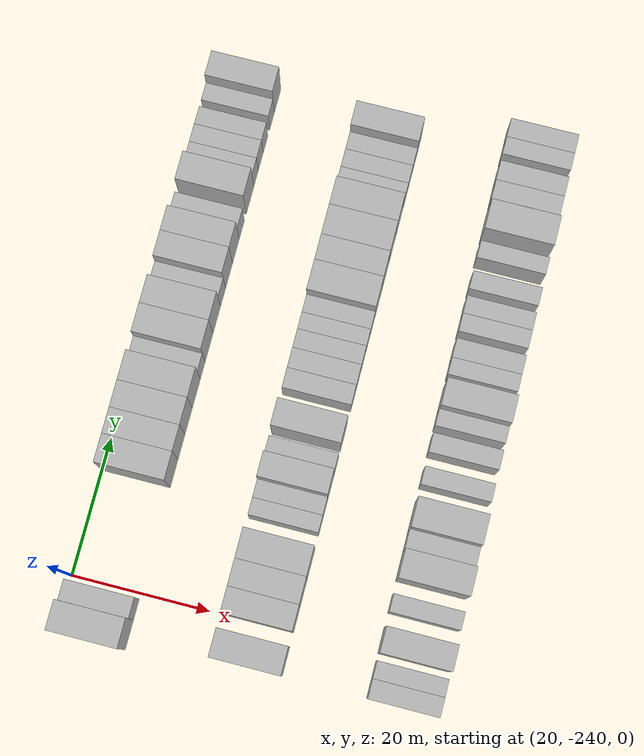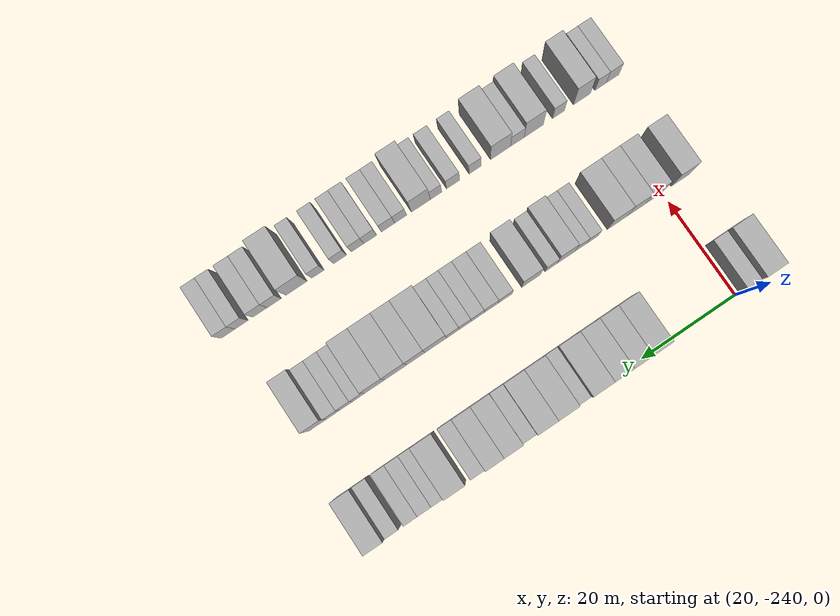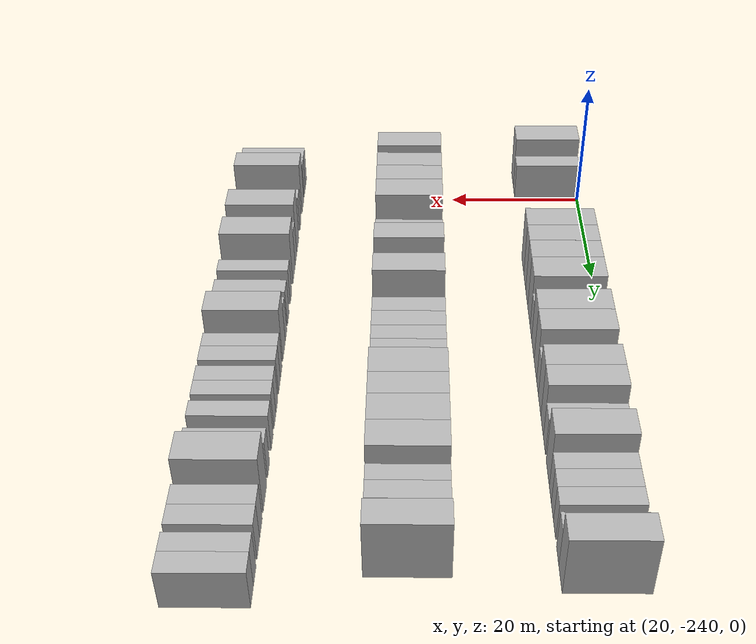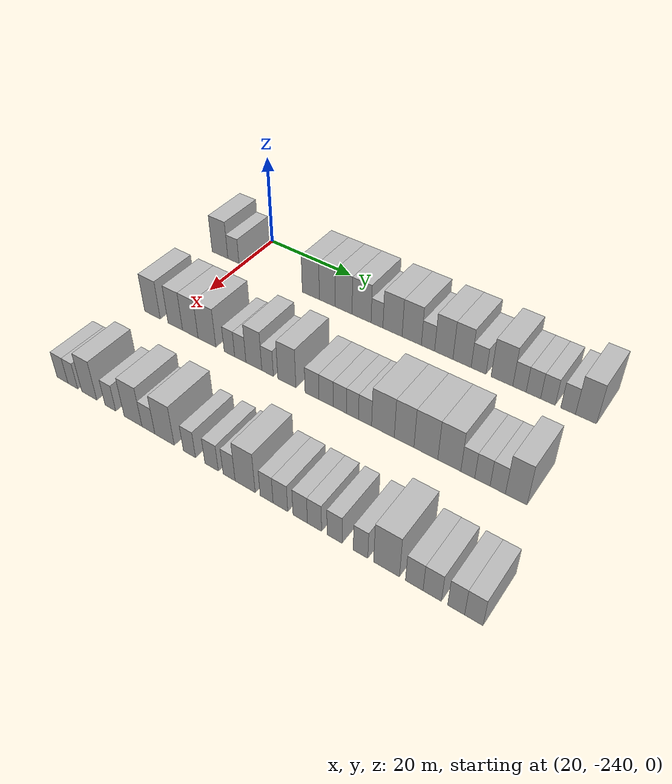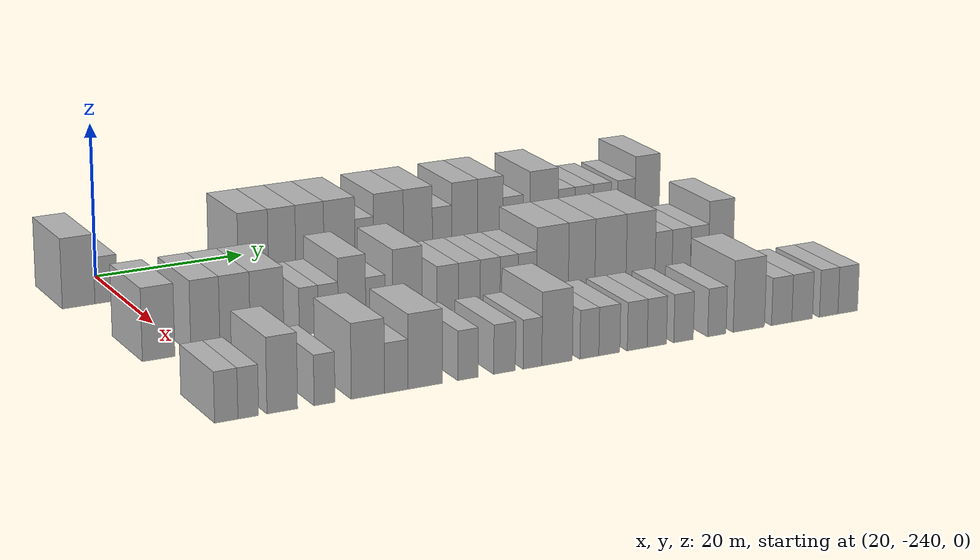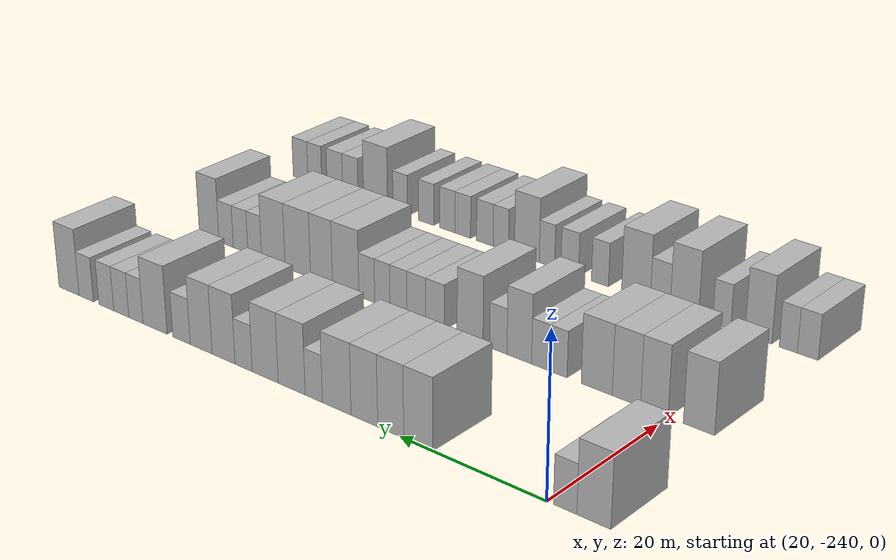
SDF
<sdf version="1.6">
 <world name="default">
  <model name="building_1">
   <static>1</static>
   <pose>25.0000 -245.8871 0 0.000000 0.000000 0.000000</pose>
   <link name="link">
    <pose>0 0 4.50 0 0 0</pose>
    <collision name="collision"><geometry><box><size>10.0000 4.2258 9.0000</size></box></geometry></collision>
    <visual name="visual">
     <cast_shadows>0</cast_shadows>
     <geometry><box><size>10.0000 4.2258 9.0000</size></box></geometry>
     <material>
      <script>
       <uri>model://HANNAS_wall/materials/scripts</uri>
       <uri>model://HANNAS_wall/materials/textures</uri>
       <name>vrc/HANNAS_wall</name>
      </script>
     </material>
    </visual>
   </link>
  </model>
  <model name="building_2">
   <static>1</static>
   <pose>25.0000 -242.2962 0 0.000000 0.000000 0.000000</pose>
   <link name="link">
    <pose>0 0 3.00 0 0 0</pose>
    <collision name="collision"><geometry><box><size>10.0000 2.9560 6.0000</size></box></geometry></collision>
    <visual name="visual">
     <cast_shadows>0</cast_shadows>
     <geometry><box><size>10.0000 2.9560 6.0000</size></box></geometry>
     <material>
      <script>
       <uri>model://HANNAS_wall/materials/scripts</uri>
       <uri>model://HANNAS_wall/materials/textures</uri>
       <name>vrc/HANNAS_wall</name>
      </script>
     </material>
    </visual>
   </link>
  </model>
  <model name="building_3">
   <static>1</static>
   <pose>25.0000 -222.6464 0 0.000000 0.000000 0.000000</pose>
   <link name="link">
    <pose>0 0 4.50 0 0 0</pose>
    <collision name="collision"><geometry><box><size>10.0000 4.1145 9.0000</size></box></geometry></collision>
    <visual name="visual">
     <cast_shadows>0</cast_shadows>
     <geometry><box><size>10.0000 4.1145 9.0000</size></box></geometry>
     <material>
      <script>
       <uri>model://HANNAS_wall/materials/scripts</uri>
       <uri>model://HANNAS_wall/materials/textures</uri>
       <name>vrc/HANNAS_wall</name>
      </script>
     </material>
    </visual>
   </link>
  </model>
  <model name="building_4">
   <static>1</static>
   <pose>25.0000 -218.7045 0 0.000000 0.000000 0.000000</pose>
   <link name="link">
    <pose>0 0 4.50 0 0 0</pose>
    <collision name="collision"><geometry><box><size>10.0000 3.7693 9.0000</size></box></geometry></collision>
    <visual name="visual">
     <cast_shadows>0</cast_shadows>
     <geometry><box><size>10.0000 3.7693 9.0000</size></box></geometry>
     <material>
      <script>
       <uri>model://HANNAS_wall/materials/scripts</uri>
       <uri>model://HANNAS_wall/materials/textures</uri>
       <name>vrc/HANNAS_wall</name>
      </script>
     </material>
    </visual>
   </link>
  </model>
  <model name="building_5">
   <static>1</static>
   <pose>25.0000 -214.8568 0 0.000000 0.000000 0.000000</pose>
   <link name="link">
    <pose>0 0 4.50 0 0 0</pose>
    <collision name="collision"><geometry><box><size>10.0000 3.9260 9.0000</size></box></geometry></collision>
    <visual name="visual">
     <cast_shadows>0</cast_shadows>
     <geometry><box><size>10.0000 3.9260 9.0000</size></box></geometry>
     <material>
      <script>
       <uri>model://HANNAS_wall/materials/scripts</uri>
       <uri>model://HANNAS_wall/materials/textures</uri>
       <name>vrc/HANNAS_wall</name>
      </script>
     </material>
    </visual>
   </link>
  </model>
  <model name="building_6">
   <static>1</static>
   <pose>25.0000 -210.7227 0 0.000000 0.000000 0.000000</pose>
   <link name="link">
    <pose>0 0 4.50 0 0 0</pose>
    <collision name="collision"><geometry><box><size>10.0000 4.3422 9.0000</size></box></geometry></collision>
    <visual name="visual">
     <cast_shadows>0</cast_shadows>
     <geometry><box><size>10.0000 4.3422 9.0000</size></box></geometry>
     <material>
      <script>
       <uri>model://HANNAS_wall/materials/scripts</uri>
       <uri>model://HANNAS_wall/materials/textures</uri>
       <name>vrc/HANNAS_wall</name>
      </script>
     </material>
    </visual>
   </link>
  </model>
  <model name="building_7">
   <static>1</static>
   <pose>25.0000 -207.2259 0 0.000000 0.000000 0.000000</pose>
   <link name="link">
    <pose>0 0 3.00 0 0 0</pose>
    <collision name="collision"><geometry><box><size>10.0000 2.6515 6.0000</size></box></geometry></collision>
    <visual name="visual">
     <cast_shadows>0</cast_shadows>
     <geometry><box><size>10.0000 2.6515 6.0000</size></box></geometry>
     <material>
      <script>
       <uri>model://HANNAS_wall/materials/scripts</uri>
       <uri>model://HANNAS_wall/materials/textures</uri>
       <name>vrc/HANNAS_wall</name>
      </script>
     </material>
    </visual>
   </link>
  </model>
  <model name="building_8">
   <static>1</static>
   <pose>25.0000 -203.7838 0 0.000000 0.000000 0.000000</pose>
   <link name="link">
    <pose>0 0 4.50 0 0 0</pose>
    <collision name="collision"><geometry><box><size>10.0000 4.2327 9.0000</size></box></geometry></collision>
    <visual name="visual">
     <cast_shadows>0</cast_shadows>
     <geometry><box><size>10.0000 4.2327 9.0000</size></box></geometry>
     <material>
      <script>
       <uri>model://HANNAS_wall/materials/scripts</uri>
       <uri>model://HANNAS_wall/materials/textures</uri>
       <name>vrc/HANNAS_wall</name>
      </script>
     </material>
    </visual>
   </link>
  </model>
  <model name="building_9">
   <static>1</static>
   <pose>25.0000 -199.5895 0 0.000000 0.000000 0.000000</pose>
   <link name="link">
    <pose>0 0 4.50 0 0 0</pose>
    <collision name="collision"><geometry><box><size>10.0000 4.1559 9.0000</size></box></geometry></collision>
    <visual name="visual">
     <cast_shadows>0</cast_shadows>
     <geometry><box><size>10.0000 4.1559 9.0000</size></box></geometry>
     <material>
      <script>
       <uri>model://HANNAS_wall/materials/scripts</uri>
       <uri>model://HANNAS_wall/materials/textures</uri>
       <name>vrc/HANNAS_wall</name>
      </script>
     </material>
    </visual>
   </link>
  </model>
  <model name="building_10">
   <static>1</static>
   <pose>25.0000 -196.1094 0 0.000000 0.000000 0.000000</pose>
   <link name="link">
    <pose>0 0 3.00 0 0 0</pose>
    <collision name="collision"><geometry><box><size>10.0000 2.8042 6.0000</size></box></geometry></collision>
    <visual name="visual">
     <cast_shadows>0</cast_shadows>
     <geometry><box><size>10.0000 2.8042 6.0000</size></box></geometry>
     <material>
      <script>
       <uri>model://HANNAS_wall/materials/scripts</uri>
       <uri>model://HANNAS_wall/materials/textures</uri>
       <name>vrc/HANNAS_wall</name>
      </script>
     </material>
    </visual>
   </link>
  </model>
  <model name="building_11">
   <static>1</static>
   <pose>25.0000 -192.8025 0 0.000000 0.000000 0.000000</pose>
   <link name="link">
    <pose>0 0 4.50 0 0 0</pose>
    <collision name="collision"><geometry><box><size>10.0000 3.8097 9.0000</size></box></geometry></collision>
    <visual name="visual">
     <cast_shadows>0</cast_shadows>
     <geometry><box><size>10.0000 3.8097 9.0000</size></box></geometry>
     <material>
      <script>
       <uri>model://HANNAS_wall/materials/scripts</uri>
       <uri>model://HANNAS_wall/materials/textures</uri>
       <name>vrc/HANNAS_wall</name>
      </script>
     </material>
    </visual>
   </link>
  </model>
  <model name="building_12">
   <static>1</static>
   <pose>25.0000 -189.0350 0 0.000000 0.000000 0.000000</pose>
   <link name="link">
    <pose>0 0 4.50 0 0 0</pose>
    <collision name="collision"><geometry><box><size>10.0000 3.7252 9.0000</size></box></geometry></collision>
    <visual name="visual">
     <cast_shadows>0</cast_shadows>
     <geometry><box><size>10.0000 3.7252 9.0000</size></box></geometry>
     <material>
      <script>
       <uri>model://HANNAS_wall/materials/scripts</uri>
       <uri>model://HANNAS_wall/materials/textures</uri>
       <name>vrc/HANNAS_wall</name>
      </script>
     </material>
    </visual>
   </link>
  </model>
  <model name="building_13">
   <static>1</static>
   <pose>25.0000 -185.6824 0 0.000000 0.000000 0.000000</pose>
   <link name="link">
    <pose>0 0 3.00 0 0 0</pose>
    <collision name="collision"><geometry><box><size>10.0000 2.9801 6.0000</size></box></geometry></collision>
    <visual name="visual">
     <cast_shadows>0</cast_shadows>
     <geometry><box><size>10.0000 2.9801 6.0000</size></box></geometry>
     <material>
      <script>
       <uri>model://HANNAS_wall/materials/scripts</uri>
       <uri>model://HANNAS_wall/materials/textures</uri>
       <name>vrc/HANNAS_wall</name>
      </script>
     </material>
    </visual>
   </link>
  </model>
  <model name="building_14">
   <static>1</static>
   <pose>25.0000 -181.0683 0 0.000000 0.000000 0.000000</pose>
   <link name="link">
    <pose>0 0 4.50 0 0 0</pose>
    <collision name="collision"><geometry><box><size>10.0000 4.2480 9.0000</size></box></geometry></collision>
    <visual name="visual">
     <cast_shadows>0</cast_shadows>
     <geometry><box><size>10.0000 4.2480 9.0000</size></box></geometry>
     <material>
      <script>
       <uri>model://HANNAS_wall/materials/scripts</uri>
       <uri>model://HANNAS_wall/materials/textures</uri>
       <name>vrc/HANNAS_wall</name>
      </script>
     </material>
    </visual>
   </link>
  </model>
  <model name="building_15">
   <static>1</static>
   <pose>25.0000 -177.6660 0 0.000000 0.000000 0.000000</pose>
   <link name="link">
    <pose>0 0 3.00 0 0 0</pose>
    <collision name="collision"><geometry><box><size>10.0000 2.5567 6.0000</size></box></geometry></collision>
    <visual name="visual">
     <cast_shadows>0</cast_shadows>
     <geometry><box><size>10.0000 2.5567 6.0000</size></box></geometry>
     <material>
      <script>
       <uri>model://HANNAS_wall/materials/scripts</uri>
       <uri>model://HANNAS_wall/materials/textures</uri>
       <name>vrc/HANNAS_wall</name>
      </script>
     </material>
    </visual>
   </link>
  </model>
  <model name="building_16">
   <static>1</static>
   <pose>25.0000 -175.0157 0 0.000000 0.000000 0.000000</pose>
   <link name="link">
    <pose>0 0 3.00 0 0 0</pose>
    <collision name="collision"><geometry><box><size>10.0000 2.7439 6.0000</size></box></geometry></collision>
    <visual name="visual">
     <cast_shadows>0</cast_shadows>
     <geometry><box><size>10.0000 2.7439 6.0000</size></box></geometry>
     <material>
      <script>
       <uri>model://HANNAS_wall/materials/scripts</uri>
       <uri>model://HANNAS_wall/materials/textures</uri>
       <name>vrc/HANNAS_wall</name>
      </script>
     </material>
    </visual>
   </link>
  </model>
  <model name="building_17">
   <static>1</static>
   <pose>25.0000 -172.2766 0 0.000000 0.000000 0.000000</pose>
   <link name="link">
    <pose>0 0 3.00 0 0 0</pose>
    <collision name="collision"><geometry><box><size>10.0000 2.7342 6.0000</size></box></geometry></collision>
    <visual name="visual">
     <cast_shadows>0</cast_shadows>
     <geometry><box><size>10.0000 2.7342 6.0000</size></box></geometry>
     <material>
      <script>
       <uri>model://HANNAS_wall/materials/scripts</uri>
       <uri>model://HANNAS_wall/materials/textures</uri>
       <name>vrc/HANNAS_wall</name>
      </script>
     </material>
    </visual>
   </link>
  </model>
  <model name="building_18">
   <static>1</static>
   <pose>25.0000 -168.5623 0 0.000000 0.000000 0.000000</pose>
   <link name="link">
    <pose>0 0 3.00 0 0 0</pose>
    <collision name="collision"><geometry><box><size>10.0000 2.6944 6.0000</size></box></geometry></collision>
    <visual name="visual">
     <cast_shadows>0</cast_shadows>
     <geometry><box><size>10.0000 2.6944 6.0000</size></box></geometry>
     <material>
      <script>
       <uri>model://HANNAS_wall/materials/scripts</uri>
       <uri>model://HANNAS_wall/materials/textures</uri>
       <name>vrc/HANNAS_wall</name>
      </script>
     </material>
    </visual>
   </link>
  </model>
  <model name="building_19">
   <static>1</static>
   <pose>25.0000 -165.3175 0 0.000000 0.000000 0.000000</pose>
   <link name="link">
    <pose>0 0 4.50 0 0 0</pose>
    <collision name="collision"><geometry><box><size>10.0000 3.7954 9.0000</size></box></geometry></collision>
    <visual name="visual">
     <cast_shadows>0</cast_shadows>
     <geometry><box><size>10.0000 3.7954 9.0000</size></box></geometry>
     <material>
      <script>
       <uri>model://HANNAS_wall/materials/scripts</uri>
       <uri>model://HANNAS_wall/materials/textures</uri>
       <name>vrc/HANNAS_wall</name>
      </script>
     </material>
    </visual>
   </link>
  </model>
  <model name="building_128">
   <static>1</static>
   <pose>47.0000 -243.9754 0 0.000000 0.000000 0.000000</pose>
   <link name="link">
    <pose>0 0 4.50 0 0 0</pose>
    <collision name="collision"><geometry><box><size>10.0000 4.0492 9.0000</size></box></geometry></collision>
    <visual name="visual">
     <cast_shadows>0</cast_shadows>
     <geometry><box><size>10.0000 4.0492 9.0000</size></box></geometry>
     <material>
      <script>
       <uri>model://HANNAS_wall/materials/scripts</uri>
       <uri>model://HANNAS_wall/materials/textures</uri>
       <name>vrc/HANNAS_wall</name>
      </script>
     </material>
    </visual>
   </link>
  </model>
  <model name="building_129">
   <static>1</static>
   <pose>47.0000 -238.1112 0 0.000000 0.000000 0.000000</pose>
   <link name="link">
    <pose>0 0 4.50 0 0 0</pose>
    <collision name="collision"><geometry><box><size>10.0000 3.6793 9.0000</size></box></geometry></collision>
    <visual name="visual">
     <cast_shadows>0</cast_shadows>
     <geometry><box><size>10.0000 3.6793 9.0000</size></box></geometry>
     <material>
      <script>
       <uri>model://HANNAS_wall/materials/scripts</uri>
       <uri>model://HANNAS_wall/materials/textures</uri>
       <name>vrc/HANNAS_wall</name>
      </script>
     </material>
    </visual>
   </link>
  </model>
  <model name="building_130">
   <static>1</static>
   <pose>47.0000 -234.3474 0 0.000000 0.000000 0.000000</pose>
   <link name="link">
    <pose>0 0 4.50 0 0 0</pose>
    <collision name="collision"><geometry><box><size>10.0000 3.8482 9.0000</size></box></geometry></collision>
    <visual name="visual">
     <cast_shadows>0</cast_shadows>
     <geometry><box><size>10.0000 3.8482 9.0000</size></box></geometry>
     <material>
      <script>
       <uri>model://HANNAS_wall/materials/scripts</uri>
       <uri>model://HANNAS_wall/materials/textures</uri>
       <name>vrc/HANNAS_wall</name>
      </script>
     </material>
    </visual>
   </link>
  </model>
  <model name="building_131">
   <static>1</static>
   <pose>47.0000 -230.2635 0 0.000000 0.000000 0.000000</pose>
   <link name="link">
    <pose>0 0 4.50 0 0 0</pose>
    <collision name="collision"><geometry><box><size>10.0000 4.3196 9.0000</size></box></geometry></collision>
    <visual name="visual">
     <cast_shadows>0</cast_shadows>
     <geometry><box><size>10.0000 4.3196 9.0000</size></box></geometry>
     <material>
      <script>
       <uri>model://HANNAS_wall/materials/scripts</uri>
       <uri>model://HANNAS_wall/materials/textures</uri>
       <name>vrc/HANNAS_wall</name>
      </script>
     </material>
    </visual>
   </link>
  </model>
  <model name="building_132">
   <static>1</static>
   <pose>47.0000 -224.8671 0 0.000000 0.000000 0.000000</pose>
   <link name="link">
    <pose>0 0 3.00 0 0 0</pose>
    <collision name="collision"><geometry><box><size>10.0000 2.4732 6.0000</size></box></geometry></collision>
    <visual name="visual">
     <cast_shadows>0</cast_shadows>
     <geometry><box><size>10.0000 2.4732 6.0000</size></box></geometry>
     <material>
      <script>
       <uri>model://HANNAS_wall/materials/scripts</uri>
       <uri>model://HANNAS_wall/materials/textures</uri>
       <name>vrc/HANNAS_wall</name>
      </script>
     </material>
    </visual>
   </link>
  </model>
  <model name="building_133">
   <static>1</static>
   <pose>47.0000 -222.3196 0 0.000000 0.000000 0.000000</pose>
   <link name="link">
    <pose>0 0 3.00 0 0 0</pose>
    <collision name="collision"><geometry><box><size>10.0000 2.6218 6.0000</size></box></geometry></collision>
    <visual name="visual">
     <cast_shadows>0</cast_shadows>
     <geometry><box><size>10.0000 2.6218 6.0000</size></box></geometry>
     <material>
      <script>
       <uri>model://HANNAS_wall/materials/scripts</uri>
       <uri>model://HANNAS_wall/materials/textures</uri>
       <name>vrc/HANNAS_wall</name>
      </script>
     </material>
    </visual>
   </link>
  </model>
  <model name="building_134">
   <static>1</static>
   <pose>47.0000 -219.1839 0 0.000000 0.000000 0.000000</pose>
   <link name="link">
    <pose>0 0 4.50 0 0 0</pose>
    <collision name="collision"><geometry><box><size>10.0000 3.6496 9.0000</size></box></geometry></collision>
    <visual name="visual">
     <cast_shadows>0</cast_shadows>
     <geometry><box><size>10.0000 3.6496 9.0000</size></box></geometry>
     <material>
      <script>
       <uri>model://HANNAS_wall/materials/scripts</uri>
       <uri>model://HANNAS_wall/materials/textures</uri>
       <name>vrc/HANNAS_wall</name>
      </script>
     </material>
    </visual>
   </link>
  </model>
  <model name="building_135">
   <static>1</static>
   <pose>47.0000 -216.0580 0 0.000000 0.000000 0.000000</pose>
   <link name="link">
    <pose>0 0 3.00 0 0 0</pose>
    <collision name="collision"><geometry><box><size>10.0000 2.6022 6.0000</size></box></geometry></collision>
    <visual name="visual">
     <cast_shadows>0</cast_shadows>
     <geometry><box><size>10.0000 2.6022 6.0000</size></box></geometry>
     <material>
      <script>
       <uri>model://HANNAS_wall/materials/scripts</uri>
       <uri>model://HANNAS_wall/materials/textures</uri>
       <name>vrc/HANNAS_wall</name>
      </script>
     </material>
    </visual>
   </link>
  </model>
  <model name="building_136">
   <static>1</static>
   <pose>47.0000 -211.7735 0 0.000000 0.000000 0.000000</pose>
   <link name="link">
    <pose>0 0 4.50 0 0 0</pose>
    <collision name="collision"><geometry><box><size>10.0000 3.9667 9.0000</size></box></geometry></collision>
    <visual name="visual">
     <cast_shadows>0</cast_shadows>
     <geometry><box><size>10.0000 3.9667 9.0000</size></box></geometry>
     <material>
      <script>
       <uri>model://HANNAS_wall/materials/scripts</uri>
       <uri>model://HANNAS_wall/materials/textures</uri>
       <name>vrc/HANNAS_wall</name>
      </script>
     </material>
    </visual>
   </link>
  </model>
  <model name="building_137">
   <static>1</static>
   <pose>47.0000 -206.3204 0 0.000000 0.000000 0.000000</pose>
   <link name="link">
    <pose>0 0 3.00 0 0 0</pose>
    <collision name="collision"><geometry><box><size>10.0000 2.9394 6.0000</size></box></geometry></collision>
    <visual name="visual">
     <cast_shadows>0</cast_shadows>
     <geometry><box><size>10.0000 2.9394 6.0000</size></box></geometry>
     <material>
      <script>
       <uri>model://HANNAS_wall/materials/scripts</uri>
       <uri>model://HANNAS_wall/materials/textures</uri>
       <name>vrc/HANNAS_wall</name>
      </script>
     </material>
    </visual>
   </link>
  </model>
  <model name="building_138">
   <static>1</static>
   <pose>47.0000 -203.3637 0 0.000000 0.000000 0.000000</pose>
   <link name="link">
    <pose>0 0 3.00 0 0 0</pose>
    <collision name="collision"><geometry><box><size>10.0000 2.9741 6.0000</size></box></geometry></collision>
    <visual name="visual">
     <cast_shadows>0</cast_shadows>
     <geometry><box><size>10.0000 2.9741 6.0000</size></box></geometry>
     <material>
      <script>
       <uri>model://HANNAS_wall/materials/scripts</uri>
       <uri>model://HANNAS_wall/materials/textures</uri>
       <name>vrc/HANNAS_wall</name>
      </script>
     </material>
    </visual>
   </link>
  </model>
  <model name="building_139">
   <static>1</static>
   <pose>47.0000 -200.5046 0 0.000000 0.000000 0.000000</pose>
   <link name="link">
    <pose>0 0 3.00 0 0 0</pose>
    <collision name="collision"><geometry><box><size>10.0000 2.7440 6.0000</size></box></geometry></collision>
    <visual name="visual">
     <cast_shadows>0</cast_shadows>
     <geometry><box><size>10.0000 2.7440 6.0000</size></box></geometry>
     <material>
      <script>
       <uri>model://HANNAS_wall/materials/scripts</uri>
       <uri>model://HANNAS_wall/materials/textures</uri>
       <name>vrc/HANNAS_wall</name>
      </script>
     </material>
    </visual>
   </link>
  </model>
  <model name="building_140">
   <static>1</static>
   <pose>47.0000 -197.8900 0 0.000000 0.000000 0.000000</pose>
   <link name="link">
    <pose>0 0 3.00 0 0 0</pose>
    <collision name="collision"><geometry><box><size>10.0000 2.4853 6.0000</size></box></geometry></collision>
    <visual name="visual">
     <cast_shadows>0</cast_shadows>
     <geometry><box><size>10.0000 2.4853 6.0000</size></box></geometry>
     <material>
      <script>
       <uri>model://HANNAS_wall/materials/scripts</uri>
       <uri>model://HANNAS_wall/materials/textures</uri>
       <name>vrc/HANNAS_wall</name>
      </script>
     </material>
    </visual>
   </link>
  </model>
  <model name="building_141">
   <static>1</static>
   <pose>47.0000 -195.3351 0 0.000000 0.000000 0.000000</pose>
   <link name="link">
    <pose>0 0 3.00 0 0 0</pose>
    <collision name="collision"><geometry><box><size>10.0000 2.6245 6.0000</size></box></geometry></collision>
    <visual name="visual">
     <cast_shadows>0</cast_shadows>
     <geometry><box><size>10.0000 2.6245 6.0000</size></box></geometry>
     <material>
      <script>
       <uri>model://HANNAS_wall/materials/scripts</uri>
       <uri>model://HANNAS_wall/materials/textures</uri>
       <name>vrc/HANNAS_wall</name>
      </script>
     </material>
    </visual>
   </link>
  </model>
  <model name="building_142">
   <static>1</static>
   <pose>47.0000 -191.7865 0 0.000000 0.000000 0.000000</pose>
   <link name="link">
    <pose>0 0 4.50 0 0 0</pose>
    <collision name="collision"><geometry><box><size>10.0000 4.4726 9.0000</size></box></geometry></collision>
    <visual name="visual">
     <cast_shadows>0</cast_shadows>
     <geometry><box><size>10.0000 4.4726 9.0000</size></box></geometry>
     <material>
      <script>
       <uri>model://HANNAS_wall/materials/scripts</uri>
       <uri>model://HANNAS_wall/materials/textures</uri>
       <name>vrc/HANNAS_wall</name>
      </script>
     </material>
    </visual>
   </link>
  </model>
  <model name="building_143">
   <static>1</static>
   <pose>47.0000 -187.6590 0 0.000000 0.000000 0.000000</pose>
   <link name="link">
    <pose>0 0 4.50 0 0 0</pose>
    <collision name="collision"><geometry><box><size>10.0000 3.7825 9.0000</size></box></geometry></collision>
    <visual name="visual">
     <cast_shadows>0</cast_shadows>
     <geometry><box><size>10.0000 3.7825 9.0000</size></box></geometry>
     <material>
      <script>
       <uri>model://HANNAS_wall/materials/scripts</uri>
       <uri>model://HANNAS_wall/materials/textures</uri>
       <name>vrc/HANNAS_wall</name>
      </script>
     </material>
    </visual>
   </link>
  </model>
  <model name="building_144">
   <static>1</static>
   <pose>47.0000 -183.5275 0 0.000000 0.000000 0.000000</pose>
   <link name="link">
    <pose>0 0 4.50 0 0 0</pose>
    <collision name="collision"><geometry><box><size>10.0000 4.4804 9.0000</size></box></geometry></collision>
    <visual name="visual">
     <cast_shadows>0</cast_shadows>
     <geometry><box><size>10.0000 4.4804 9.0000</size></box></geometry>
     <material>
      <script>
       <uri>model://HANNAS_wall/materials/scripts</uri>
       <uri>model://HANNAS_wall/materials/textures</uri>
       <name>vrc/HANNAS_wall</name>
      </script>
     </material>
    </visual>
   </link>
  </model>
  <model name="building_145">
   <static>1</static>
   <pose>47.0000 -179.1801 0 0.000000 0.000000 0.000000</pose>
   <link name="link">
    <pose>0 0 4.50 0 0 0</pose>
    <collision name="collision"><geometry><box><size>10.0000 4.2145 9.0000</size></box></geometry></collision>
    <visual name="visual">
     <cast_shadows>0</cast_shadows>
     <geometry><box><size>10.0000 4.2145 9.0000</size></box></geometry>
     <material>
      <script>
       <uri>model://HANNAS_wall/materials/scripts</uri>
       <uri>model://HANNAS_wall/materials/textures</uri>
       <name>vrc/HANNAS_wall</name>
      </script>
     </material>
    </visual>
   </link>
  </model>
  <model name="building_146">
   <static>1</static>
   <pose>47.0000 -175.8263 0 0.000000 0.000000 0.000000</pose>
   <link name="link">
    <pose>0 0 3.00 0 0 0</pose>
    <collision name="collision"><geometry><box><size>10.0000 2.4930 6.0000</size></box></geometry></collision>
    <visual name="visual">
     <cast_shadows>0</cast_shadows>
     <geometry><box><size>10.0000 2.4930 6.0000</size></box></geometry>
     <material>
      <script>
       <uri>model://HANNAS_wall/materials/scripts</uri>
       <uri>model://HANNAS_wall/materials/textures</uri>
       <name>vrc/HANNAS_wall</name>
      </script>
     </material>
    </visual>
   </link>
  </model>
  <model name="building_147">
   <static>1</static>
   <pose>47.0000 -173.2256 0 0.000000 0.000000 0.000000</pose>
   <link name="link">
    <pose>0 0 3.00 0 0 0</pose>
    <collision name="collision"><geometry><box><size>10.0000 2.7085 6.0000</size></box></geometry></collision>
    <visual name="visual">
     <cast_shadows>0</cast_shadows>
     <geometry><box><size>10.0000 2.7085 6.0000</size></box></geometry>
     <material>
      <script>
       <uri>model://HANNAS_wall/materials/scripts</uri>
       <uri>model://HANNAS_wall/materials/textures</uri>
       <name>vrc/HANNAS_wall</name>
      </script>
     </material>
    </visual>
   </link>
  </model>
  <model name="building_148">
   <static>1</static>
   <pose>47.0000 -170.5434 0 0.000000 0.000000 0.000000</pose>
   <link name="link">
    <pose>0 0 3.00 0 0 0</pose>
    <collision name="collision"><geometry><box><size>10.0000 2.6559 6.0000</size></box></geometry></collision>
    <visual name="visual">
     <cast_shadows>0</cast_shadows>
     <geometry><box><size>10.0000 2.6559 6.0000</size></box></geometry>
     <material>
      <script>
       <uri>model://HANNAS_wall/materials/scripts</uri>
       <uri>model://HANNAS_wall/materials/textures</uri>
       <name>vrc/HANNAS_wall</name>
      </script>
     </material>
    </visual>
   </link>
  </model>
  <model name="building_149">
   <static>1</static>
   <pose>47.0000 -167.3692 0 0.000000 0.000000 0.000000</pose>
   <link name="link">
    <pose>0 0 4.50 0 0 0</pose>
    <collision name="collision"><geometry><box><size>10.0000 3.6924 9.0000</size></box></geometry></collision>
    <visual name="visual">
     <cast_shadows>0</cast_shadows>
     <geometry><box><size>10.0000 3.6924 9.0000</size></box></geometry>
     <material>
      <script>
       <uri>model://HANNAS_wall/materials/scripts</uri>
       <uri>model://HANNAS_wall/materials/textures</uri>
       <name>vrc/HANNAS_wall</name>
      </script>
     </material>
    </visual>
   </link>
  </model>
  <model name="building_255">
   <static>1</static>
   <pose>69.0000 -244.6135 0 0.000000 0.000000 0.000000</pose>
   <link name="link">
    <pose>0 0 3.00 0 0 0</pose>
    <collision name="collision"><geometry><box><size>10.0000 2.7731 6.0000</size></box></geometry></collision>
    <visual name="visual">
     <cast_shadows>0</cast_shadows>
     <geometry><box><size>10.0000 2.7731 6.0000</size></box></geometry>
     <material>
      <script>
       <uri>model://HANNAS_wall/materials/scripts</uri>
       <uri>model://HANNAS_wall/materials/textures</uri>
       <name>vrc/HANNAS_wall</name>
      </script>
     </material>
    </visual>
   </link>
  </model>
  <model name="building_256">
   <static>1</static>
   <pose>69.0000 -241.9943 0 0.000000 0.000000 0.000000</pose>
   <link name="link">
    <pose>0 0 3.00 0 0 0</pose>
    <collision name="collision"><geometry><box><size>10.0000 2.4653 6.0000</size></box></geometry></collision>
    <visual name="visual">
     <cast_shadows>0</cast_shadows>
     <geometry><box><size>10.0000 2.4653 6.0000</size></box></geometry>
     <material>
      <script>
       <uri>model://HANNAS_wall/materials/scripts</uri>
       <uri>model://HANNAS_wall/materials/textures</uri>
       <name>vrc/HANNAS_wall</name>
      </script>
     </material>
    </visual>
   </link>
  </model>
  <model name="building_257">
   <static>1</static>
   <pose>69.0000 -237.9110 0 0.000000 0.000000 0.000000</pose>
   <link name="link">
    <pose>0 0 4.50 0 0 0</pose>
    <collision name="collision"><geometry><box><size>10.0000 3.7014 9.0000</size></box></geometry></collision>
    <visual name="visual">
     <cast_shadows>0</cast_shadows>
     <geometry><box><size>10.0000 3.7014 9.0000</size></box></geometry>
     <material>
      <script>
       <uri>model://HANNAS_wall/materials/scripts</uri>
       <uri>model://HANNAS_wall/materials/textures</uri>
       <name>vrc/HANNAS_wall</name>
      </script>
     </material>
    </visual>
   </link>
  </model>
  <model name="building_258">
   <static>1</static>
   <pose>69.0000 -232.7808 0 0.000000 0.000000 0.000000</pose>
   <link name="link">
    <pose>0 0 3.00 0 0 0</pose>
    <collision name="collision"><geometry><box><size>10.0000 2.5589 6.0000</size></box></geometry></collision>
    <visual name="visual">
     <cast_shadows>0</cast_shadows>
     <geometry><box><size>10.0000 2.5589 6.0000</size></box></geometry>
     <material>
      <script>
       <uri>model://HANNAS_wall/materials/scripts</uri>
       <uri>model://HANNAS_wall/materials/textures</uri>
       <name>vrc/HANNAS_wall</name>
      </script>
     </material>
    </visual>
   </link>
  </model>
  <model name="building_259">
   <static>1</static>
   <pose>69.0000 -227.4366 0 0.000000 0.000000 0.000000</pose>
   <link name="link">
    <pose>0 0 4.50 0 0 0</pose>
    <collision name="collision"><geometry><box><size>10.0000 4.1297 9.0000</size></box></geometry></collision>
    <visual name="visual">
     <cast_shadows>0</cast_shadows>
     <geometry><box><size>10.0000 4.1297 9.0000</size></box></geometry>
     <material>
      <script>
       <uri>model://HANNAS_wall/materials/scripts</uri>
       <uri>model://HANNAS_wall/materials/textures</uri>
       <name>vrc/HANNAS_wall</name>
      </script>
     </material>
    </visual>
   </link>
  </model>
  <model name="building_260">
   <static>1</static>
   <pose>69.0000 -223.9012 0 0.000000 0.000000 0.000000</pose>
   <link name="link">
    <pose>0 0 3.00 0 0 0</pose>
    <collision name="collision"><geometry><box><size>10.0000 2.9411 6.0000</size></box></geometry></collision>
    <visual name="visual">
     <cast_shadows>0</cast_shadows>
     <geometry><box><size>10.0000 2.9411 6.0000</size></box></geometry>
     <material>
      <script>
       <uri>model://HANNAS_wall/materials/scripts</uri>
       <uri>model://HANNAS_wall/materials/textures</uri>
       <name>vrc/HANNAS_wall</name>
      </script>
     </material>
    </visual>
   </link>
  </model>
  <model name="building_261">
   <static>1</static>
   <pose>69.0000 -220.2724 0 0.000000 0.000000 0.000000</pose>
   <link name="link">
    <pose>0 0 4.50 0 0 0</pose>
    <collision name="collision"><geometry><box><size>10.0000 4.3164 9.0000</size></box></geometry></collision>
    <visual name="visual">
     <cast_shadows>0</cast_shadows>
     <geometry><box><size>10.0000 4.3164 9.0000</size></box></geometry>
     <material>
      <script>
       <uri>model://HANNAS_wall/materials/scripts</uri>
       <uri>model://HANNAS_wall/materials/textures</uri>
       <name>vrc/HANNAS_wall</name>
      </script>
     </material>
    </visual>
   </link>
  </model>
  <model name="building_262">
   <static>1</static>
   <pose>69.0000 -214.8013 0 0.000000 0.000000 0.000000</pose>
   <link name="link">
    <pose>0 0 3.00 0 0 0</pose>
    <collision name="collision"><geometry><box><size>10.0000 2.6257 6.0000</size></box></geometry></collision>
    <visual name="visual">
     <cast_shadows>0</cast_shadows>
     <geometry><box><size>10.0000 2.6257 6.0000</size></box></geometry>
     <material>
      <script>
       <uri>model://HANNAS_wall/materials/scripts</uri>
       <uri>model://HANNAS_wall/materials/textures</uri>
       <name>vrc/HANNAS_wall</name>
      </script>
     </material>
    </visual>
   </link>
  </model>
  <model name="building_263">
   <static>1</static>
   <pose>69.0000 -210.0820 0 0.000000 0.000000 0.000000</pose>
   <link name="link">
    <pose>0 0 3.00 0 0 0</pose>
    <collision name="collision"><geometry><box><size>10.0000 2.8130 6.0000</size></box></geometry></collision>
    <visual name="visual">
     <cast_shadows>0</cast_shadows>
     <geometry><box><size>10.0000 2.8130 6.0000</size></box></geometry>
     <material>
      <script>
       <uri>model://HANNAS_wall/materials/scripts</uri>
       <uri>model://HANNAS_wall/materials/textures</uri>
       <name>vrc/HANNAS_wall</name>
      </script>
     </material>
    </visual>
   </link>
  </model>
  <model name="building_264">
   <static>1</static>
   <pose>69.0000 -206.4500 0 0.000000 0.000000 0.000000</pose>
   <link name="link">
    <pose>0 0 3.00 0 0 0</pose>
    <collision name="collision"><geometry><box><size>10.0000 2.4510 6.0000</size></box></geometry></collision>
    <visual name="visual">
     <cast_shadows>0</cast_shadows>
     <geometry><box><size>10.0000 2.4510 6.0000</size></box></geometry>
     <material>
      <script>
       <uri>model://HANNAS_wall/materials/scripts</uri>
       <uri>model://HANNAS_wall/materials/textures</uri>
       <name>vrc/HANNAS_wall</name>
      </script>
     </material>
    </visual>
   </link>
  </model>
  <model name="building_265">
   <static>1</static>
   <pose>69.0000 -203.2068 0 0.000000 0.000000 0.000000</pose>
   <link name="link">
    <pose>0 0 4.50 0 0 0</pose>
    <collision name="collision"><geometry><box><size>10.0000 4.0355 9.0000</size></box></geometry></collision>
    <visual name="visual">
     <cast_shadows>0</cast_shadows>
     <geometry><box><size>10.0000 4.0355 9.0000</size></box></geometry>
     <material>
      <script>
       <uri>model://HANNAS_wall/materials/scripts</uri>
       <uri>model://HANNAS_wall/materials/textures</uri>
       <name>vrc/HANNAS_wall</name>
      </script>
     </material>
    </visual>
   </link>
  </model>
  <model name="building_266">
   <static>1</static>
   <pose>69.0000 -198.9245 0 0.000000 0.000000 0.000000</pose>
   <link name="link">
    <pose>0 0 3.00 0 0 0</pose>
    <collision name="collision"><geometry><box><size>10.0000 2.5291 6.0000</size></box></geometry></collision>
    <visual name="visual">
     <cast_shadows>0</cast_shadows>
     <geometry><box><size>10.0000 2.5291 6.0000</size></box></geometry>
     <material>
      <script>
       <uri>model://HANNAS_wall/materials/scripts</uri>
       <uri>model://HANNAS_wall/materials/textures</uri>
       <name>vrc/HANNAS_wall</name>
      </script>
     </material>
    </visual>
   </link>
  </model>
  <model name="building_267">
   <static>1</static>
   <pose>69.0000 -196.2484 0 0.000000 0.000000 0.000000</pose>
   <link name="link">
    <pose>0 0 3.00 0 0 0</pose>
    <collision name="collision"><geometry><box><size>10.0000 2.8231 6.0000</size></box></geometry></collision>
    <visual name="visual">
     <cast_shadows>0</cast_shadows>
     <geometry><box><size>10.0000 2.8231 6.0000</size></box></geometry>
     <material>
      <script>
       <uri>model://HANNAS_wall/materials/scripts</uri>
       <uri>model://HANNAS_wall/materials/textures</uri>
       <name>vrc/HANNAS_wall</name>
      </script>
     </material>
    </visual>
   </link>
  </model>
  <model name="building_268">
   <static>1</static>
   <pose>69.0000 -192.4854 0 0.000000 0.000000 0.000000</pose>
   <link name="link">
    <pose>0 0 3.00 0 0 0</pose>
    <collision name="collision"><geometry><box><size>10.0000 2.7028 6.0000</size></box></geometry></collision>
    <visual name="visual">
     <cast_shadows>0</cast_shadows>
     <geometry><box><size>10.0000 2.7028 6.0000</size></box></geometry>
     <material>
      <script>
       <uri>model://HANNAS_wall/materials/scripts</uri>
       <uri>model://HANNAS_wall/materials/textures</uri>
       <name>vrc/HANNAS_wall</name>
      </script>
     </material>
    </visual>
   </link>
  </model>
  <model name="building_269">
   <static>1</static>
   <pose>69.0000 -189.8186 0 0.000000 0.000000 0.000000</pose>
   <link name="link">
    <pose>0 0 3.00 0 0 0</pose>
    <collision name="collision"><geometry><box><size>10.0000 2.6308 6.0000</size></box></geometry></collision>
    <visual name="visual">
     <cast_shadows>0</cast_shadows>
     <geometry><box><size>10.0000 2.6308 6.0000</size></box></geometry>
     <material>
      <script>
       <uri>model://HANNAS_wall/materials/scripts</uri>
       <uri>model://HANNAS_wall/materials/textures</uri>
       <name>vrc/HANNAS_wall</name>
      </script>
     </material>
    </visual>
   </link>
  </model>
  <model name="building_270">
   <static>1</static>
   <pose>69.0000 -186.1504 0 0.000000 0.000000 0.000000</pose>
   <link name="link">
    <pose>0 0 3.00 0 0 0</pose>
    <collision name="collision"><geometry><box><size>10.0000 2.7057 6.0000</size></box></geometry></collision>
    <visual name="visual">
     <cast_shadows>0</cast_shadows>
     <geometry><box><size>10.0000 2.7057 6.0000</size></box></geometry>
     <material>
      <script>
       <uri>model://HANNAS_wall/materials/scripts</uri>
       <uri>model://HANNAS_wall/materials/textures</uri>
       <name>vrc/HANNAS_wall</name>
      </script>
     </material>
    </visual>
   </link>
  </model>
  <model name="building_271">
   <static>1</static>
   <pose>69.0000 -181.5218 0 0.000000 0.000000 0.000000</pose>
   <link name="link">
    <pose>0 0 3.00 0 0 0</pose>
    <collision name="collision"><geometry><box><size>10.0000 2.5514 6.0000</size></box></geometry></collision>
    <visual name="visual">
     <cast_shadows>0</cast_shadows>
     <geometry><box><size>10.0000 2.5514 6.0000</size></box></geometry>
     <material>
      <script>
       <uri>model://HANNAS_wall/materials/scripts</uri>
       <uri>model://HANNAS_wall/materials/textures</uri>
       <name>vrc/HANNAS_wall</name>
      </script>
     </material>
    </visual>
   </link>
  </model>
  <model name="building_272">
   <static>1</static>
   <pose>69.0000 -177.0409 0 0.000000 0.000000 0.000000</pose>
   <link name="link">
    <pose>0 0 4.50 0 0 0</pose>
    <collision name="collision"><geometry><box><size>10.0000 4.4103 9.0000</size></box></geometry></collision>
    <visual name="visual">
     <cast_shadows>0</cast_shadows>
     <geometry><box><size>10.0000 4.4103 9.0000</size></box></geometry>
     <material>
      <script>
       <uri>model://HANNAS_wall/materials/scripts</uri>
       <uri>model://HANNAS_wall/materials/textures</uri>
       <name>vrc/HANNAS_wall</name>
      </script>
     </material>
    </visual>
   </link>
  </model>
  <model name="building_273">
   <static>1</static>
   <pose>69.0000 -172.3857 0 0.000000 0.000000 0.000000</pose>
   <link name="link">
    <pose>0 0 3.00 0 0 0</pose>
    <collision name="collision"><geometry><box><size>10.0000 2.9001 6.0000</size></box></geometry></collision>
    <visual name="visual">
     <cast_shadows>0</cast_shadows>
     <geometry><box><size>10.0000 2.9001 6.0000</size></box></geometry>
     <material>
      <script>
       <uri>model://HANNAS_wall/materials/scripts</uri>
       <uri>model://HANNAS_wall/materials/textures</uri>
       <name>vrc/HANNAS_wall</name>
      </script>
     </material>
    </visual>
   </link>
  </model>
  <model name="building_274">
   <static>1</static>
   <pose>69.0000 -169.4499 0 0.000000 0.000000 0.000000</pose>
   <link name="link">
    <pose>0 0 3.00 0 0 0</pose>
    <collision name="collision"><geometry><box><size>10.0000 2.9716 6.0000</size></box></geometry></collision>
    <visual name="visual">
     <cast_shadows>0</cast_shadows>
     <geometry><box><size>10.0000 2.9716 6.0000</size></box></geometry>
     <material>
      <script>
       <uri>model://HANNAS_wall/materials/scripts</uri>
       <uri>model://HANNAS_wall/materials/textures</uri>
       <name>vrc/HANNAS_wall</name>
      </script>
     </material>
    </visual>
   </link>
  </model>
  <model name="building_275">
   <static>1</static>
   <pose>69.0000 -165.6275 0 0.000000 0.000000 0.000000</pose>
   <link name="link">
    <pose>0 0 3.00 0 0 0</pose>
    <collision name="collision"><geometry><box><size>10.0000 2.6732 6.0000</size></box></geometry></collision>
    <visual name="visual">
     <cast_shadows>0</cast_shadows>
     <geometry><box><size>10.0000 2.6732 6.0000</size></box></geometry>
     <material>
      <script>
       <uri>model://HANNAS_wall/materials/scripts</uri>
       <uri>model://HANNAS_wall/materials/textures</uri>
       <name>vrc/HANNAS_wall</name>
      </script>
     </material>
    </visual>
   </link>
  </model>
  <model name="building_276">
   <static>1</static>
   <pose>69.0000 -162.8610 0 0.000000 0.000000 0.000000</pose>
   <link name="link">
    <pose>0 0 3.00 0 0 0</pose>
    <collision name="collision"><geometry><box><size>10.0000 2.8598 6.0000</size></box></geometry></collision>
    <visual name="visual">
     <cast_shadows>0</cast_shadows>
     <geometry><box><size>10.0000 2.8598 6.0000</size></box></geometry>
     <material>
      <script>
       <uri>model://HANNAS_wall/materials/scripts</uri>
       <uri>model://HANNAS_wall/materials/textures</uri>
       <name>vrc/HANNAS_wall</name>
      </script>
     </material>
    </visual>
   </link>
  </model>
 </world>
</sdf>
